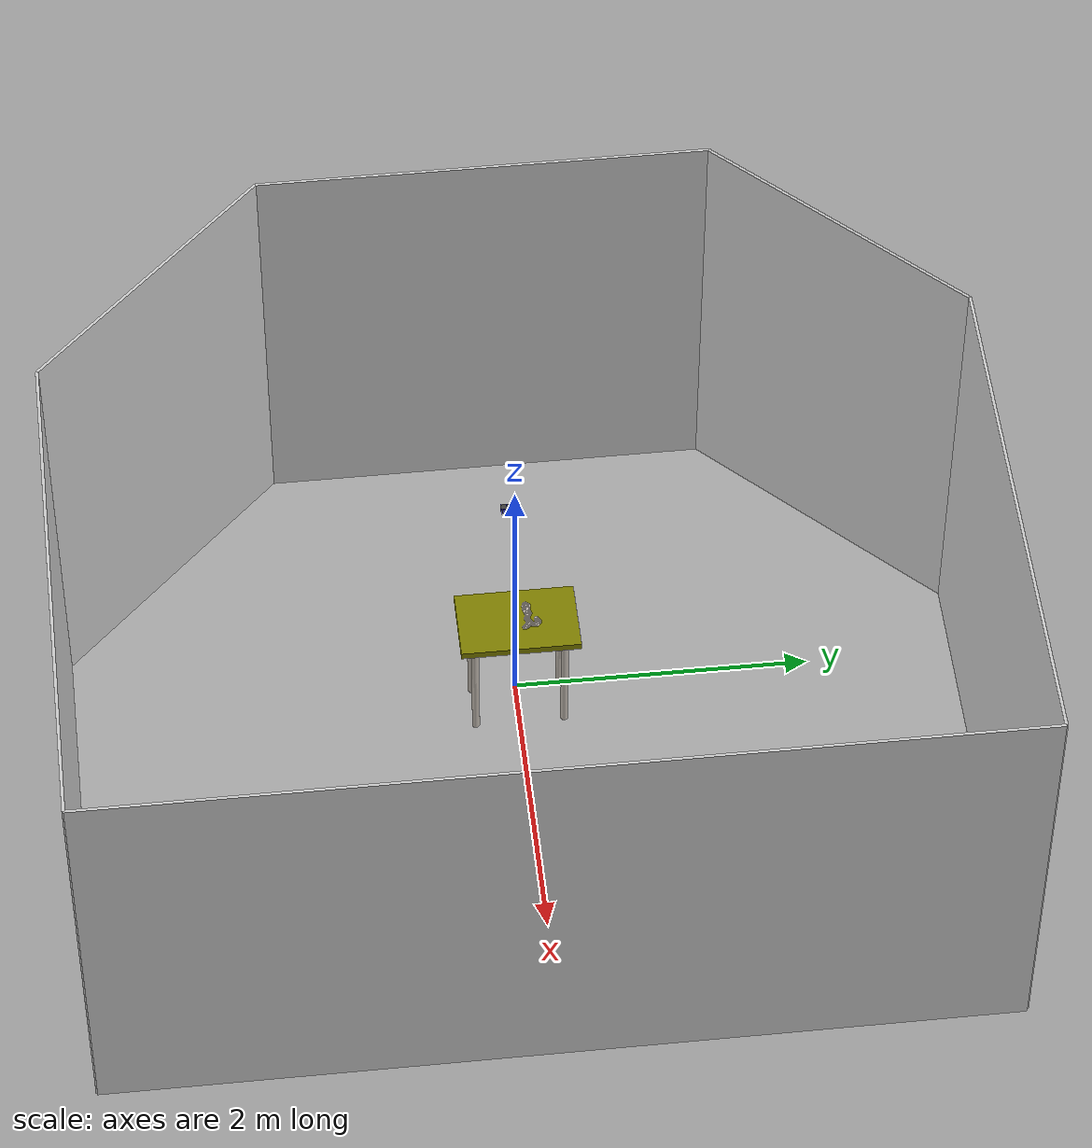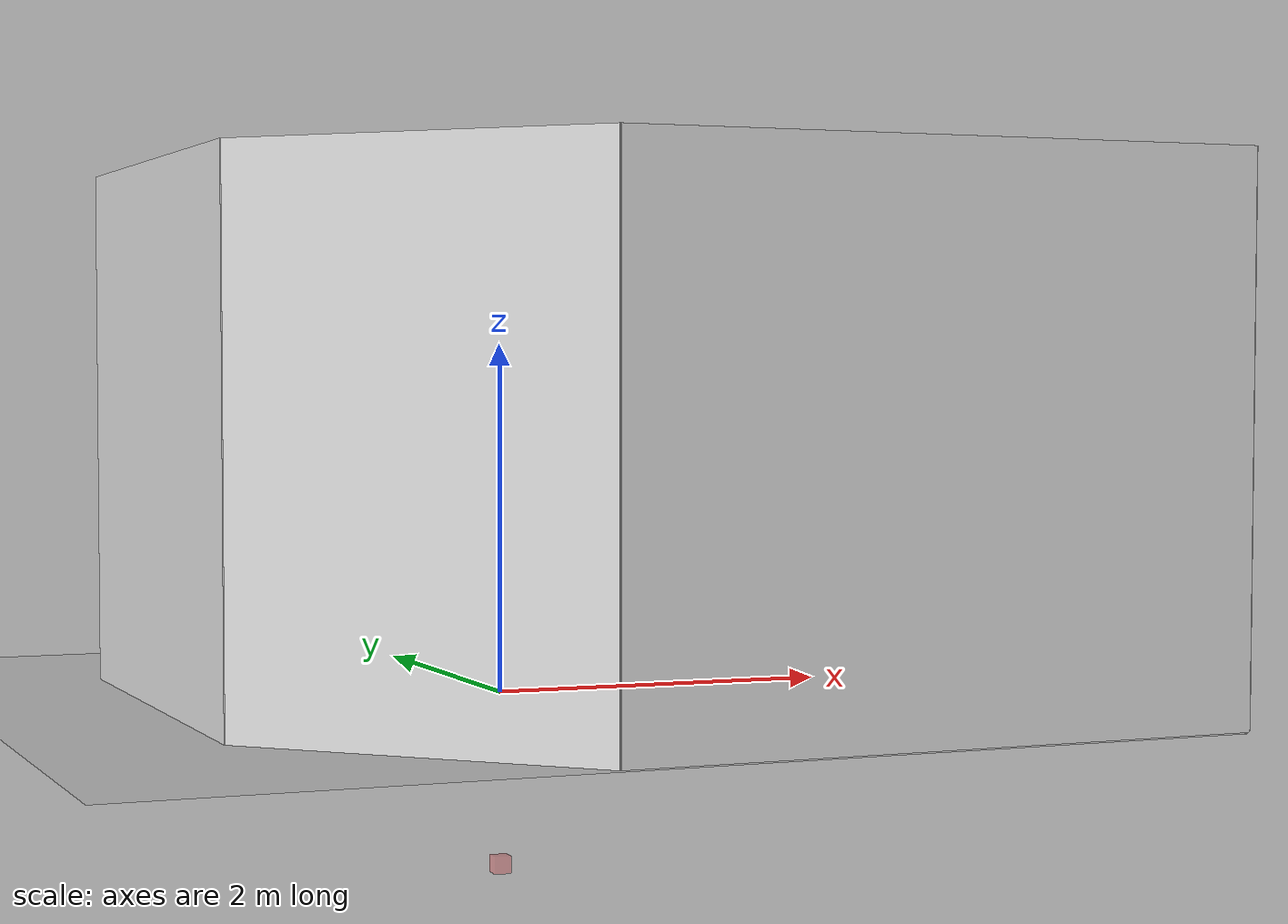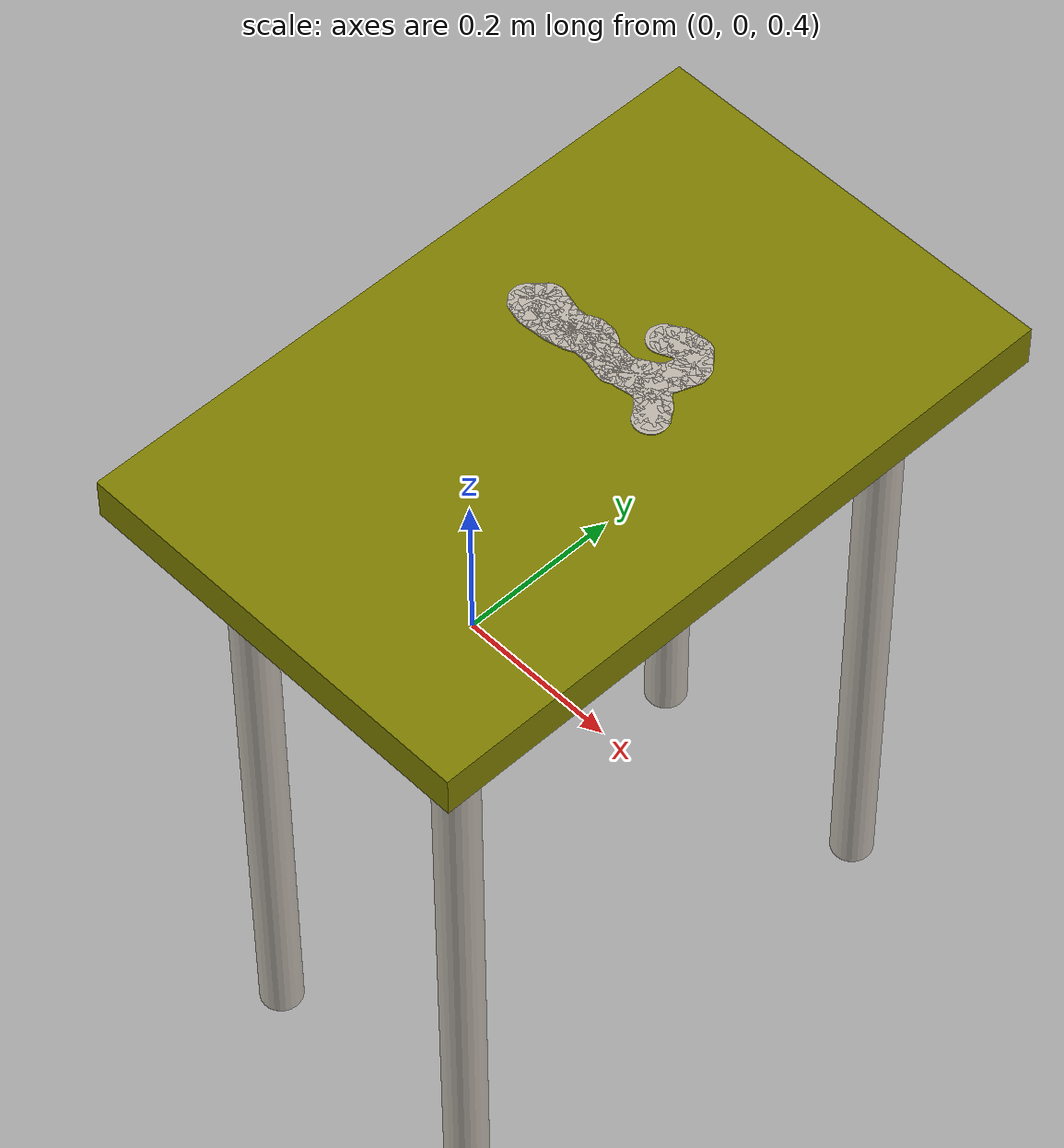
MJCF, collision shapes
<mujoco model="base">
  <compiler angle="radian" meshdir="meshes/"/>

  <option impratio="20" density="1.2" viscosity="2e-05" cone="elliptic"/>

  <size njmax="5000" nconmax="5000"/>

  <visual>
    <map znear="0.001"/>
  </visual>

  <asset>
    <texture type="skybox" colorspace="auto" builtin="gradient" rgb1="0.9 0.9 1" rgb2="0.2 0.3 0.4" width="256" height="1536"/>
    <texture type="2d" colorspace="sRGB" name="texplane" file="/home/cobot/Desktop/Raja/Projects/robosuite/robosuite/models/assets/textures/light-gray-floor-tile.png"/>
    <texture type="cube" colorspace="linear" name="tex-ceramic" file="/home/cobot/Desktop/Raja/Projects/robosuite/robosuite/models/assets/textures/ceramic.png"/>
    <texture type="cube" colorspace="linear" name="tex-steel-brushed" file="/home/cobot/Desktop/Raja/Projects/robosuite/robosuite/models/assets/textures/steel-brushed.png"/>
    <texture type="2d" colorspace="linear" name="tex-light-gray-plaster" file="/home/cobot/Desktop/Raja/Projects/robosuite/robosuite/models/assets/textures/light-gray-plaster.png"/>
    <texture type="cube" colorspace="auto" name="textable" builtin="flat" rgb1="0.5 0.5 0.5" width="512" height="3072"/>
    <texture type="cube" colorspace="linear" name="dirt" file="/home/cobot/Desktop/Raja/Projects/robosuite/robosuite/models/assets/textures/dirt.png"/>
    <material name="floorplane" texture="texplane" texuniform="true" texrepeat="2 2" specular="0" shininess="0" reflectance="0.01"/>
    <material name="table_ceramic" texture="tex-ceramic" specular="0.2" shininess="0"/>
    <material name="table_legs_metal" texture="tex-steel-brushed" shininess="0.8" reflectance="0.8"/>
    <material name="walls_mat" texture="tex-light-gray-plaster" texuniform="true" texrepeat="3 3" specular="0.1" shininess="0.1"/>
    <material name="table_mat" texture="textable"/>
    <material name="dirt_mat" texture="dirt" specular="0" shininess="0"/>
    <material name="robot0_robot_grey" rgba="0.6 0.6 0.6 1"/>
    <material name="robot0_white"/>
    <material name="robot0_black" rgba="0.25 0.25 0.25 1"/>
    <material name="robot0_off_white" rgba="0.9 0.92 0.93 1"/>
    <mesh name="robot0_base_link" file="/home/cobot/Desktop/Raja/Projects/robosuite/robosuite/models/assets/robots/nero/meshes/base_link.stl"/>
    <mesh name="robot0_link1" file="/home/cobot/Desktop/Raja/Projects/robosuite/robosuite/models/assets/robots/nero/meshes/link1.stl"/>
    <mesh name="robot0_link2" file="/home/cobot/Desktop/Raja/Projects/robosuite/robosuite/models/assets/robots/nero/meshes/link2.stl"/>
    <mesh name="robot0_link3" file="/home/cobot/Desktop/Raja/Projects/robosuite/robosuite/models/assets/robots/nero/meshes/link3.stl"/>
    <mesh name="robot0_link4" file="/home/cobot/Desktop/Raja/Projects/robosuite/robosuite/models/assets/robots/nero/meshes/link4.stl"/>
    <mesh name="robot0_link5" file="/home/cobot/Desktop/Raja/Projects/robosuite/robosuite/models/assets/robots/nero/meshes/link5.stl"/>
    <mesh name="robot0_link6" file="/home/cobot/Desktop/Raja/Projects/robosuite/robosuite/models/assets/robots/nero/meshes/link6.stl"/>
    <mesh name="robot0_link7" file="/home/cobot/Desktop/Raja/Projects/robosuite/robosuite/models/assets/robots/nero/meshes/link7.stl"/>
  </asset>

  <worldbody>
    <geom name="floor" size="3 3 0.125" type="plane" group="1" material="floorplane"/>
    <geom name="wall_leftcorner_visual" size="1.06 1.5 0.01" pos="-1.25 2.25 1.5" quat="0.653281 0.653281 0.270598 0.270598" type="box" contype="0" conaffinity="0" group="1" material="walls_mat"/>
    <geom name="wall_rightcorner_visual" size="1.06 1.5 0.01" pos="-1.25 -2.25 1.5" quat="0.653281 0.653281 -0.270598 -0.270598" type="box" contype="0" conaffinity="0" group="1" material="walls_mat"/>
    <geom name="wall_left_visual" size="1.75 1.5 0.01" pos="1.25 3 1.5" quat="0.707107 0.707107 0 0" type="box" contype="0" conaffinity="0" group="1" material="walls_mat"/>
    <geom name="wall_right_visual" size="1.75 1.5 0.01" pos="1.25 -3 1.5" quat="0.707107 -0.707107 0 0" type="box" contype="0" conaffinity="0" group="1" material="walls_mat"/>
    <geom name="wall_rear_visual" size="1.5 1.5 0.01" pos="-2 0 1.5" quat="0.5 0.5 0.5 0.5" type="box" contype="0" conaffinity="0" group="1" material="walls_mat"/>
    <geom name="wall_front_visual" size="3 1.5 0.01" pos="3 0 1.5" quat="0.5 0.5 -0.5 -0.5" type="box" contype="0" conaffinity="0" group="1" material="walls_mat"/>
    <camera name="frontview" pos="1.6 0 1.45" quat="0.560842 0.430646 0.430646 0.560842"/>
    <camera name="topview" pos="-0.03 0 2" quat="-0.707107 0 0 0.707107"/>
    <camera name="agentview" pos="0.5 0 1.35" quat="0.653098 0.271041 0.271041 0.653098"/>
    <camera name="sideview" pos="-0.0565177 1.27612 1.48796" quat="0.00990507 0.00687796 0.591223 0.806418"/>
    <camera name="teleopview" pos="-0.3 0.1 1.2" quat="0.583833 0.399104 -0.399421 -0.583368"/>
    <light pos="1 1 1.5" dir="-0.19245 -0.19245 -0.96225" type="directional" castshadow="false"/>
    <body name="table" pos="0.15 0 0.875">
      <geom name="table_collision" size="0.25 0.4 0.025" type="box" friction="0.03" rgba="0.5 0.5 0 1"/>
      <geom name="table_visual" size="0.25 0.4 0.025" type="box" contype="0" conaffinity="0" group="1" material="table_ceramic"/>
      <geom name="table_leg1_visual" size="0.025 0.4375" pos="0.15 0.3 -0.4375" type="cylinder" contype="0" conaffinity="0" group="1" material="table_legs_metal"/>
      <geom name="table_leg2_visual" size="0.025 0.4375" pos="-0.15 0.3 -0.4375" type="cylinder" contype="0" conaffinity="0" group="1" material="table_legs_metal"/>
      <geom name="table_leg3_visual" size="0.025 0.4375" pos="-0.15 -0.3 -0.4375" type="cylinder" contype="0" conaffinity="0" group="1" material="table_legs_metal"/>
      <geom name="table_leg4_visual" size="0.025 0.4375" pos="0.15 -0.3 -0.4375" type="cylinder" contype="0" conaffinity="0" group="1" material="table_legs_metal"/>
      <site name="table_top" pos="0 0 0.025" size="0.001" rgba="0 0 0 0"/>
      <body name="contact0_main" pos="0.0688657 0.0447439 0.025">
        <geom name="contact0_g0_vis" size="0.02 0.001" type="cylinder" contype="0" conaffinity="0" group="1" mass="0" material="dirt_mat"/>
        <site name="contact0_default_site" pos="0 0 0" size="0.002" rgba="1 0 0 0"/>
      </body>
      <body name="contact1_main" pos="0.0659896 0.0488339 0.025">
        <geom name="contact1_g0_vis" size="0.02 0.001" type="cylinder" contype="0" conaffinity="0" group="1" mass="0" material="dirt_mat"/>
        <site name="contact1_default_site" pos="0 0 0" size="0.002" rgba="1 0 0 0"/>
      </body>
      <body name="contact2_main" pos="0.0631136 0.052924 0.025">
        <geom name="contact2_g0_vis" size="0.02 0.001" type="cylinder" contype="0" conaffinity="0" group="1" mass="0" material="dirt_mat"/>
        <site name="contact2_default_site" pos="0 0 0" size="0.002" rgba="1 0 0 0"/>
      </body>
      <body name="contact3_main" pos="0.0602376 0.057014 0.025">
        <geom name="contact3_g0_vis" size="0.02 0.001" type="cylinder" contype="0" conaffinity="0" group="1" mass="0" material="dirt_mat"/>
        <site name="contact3_default_site" pos="0 0 0" size="0.002" rgba="1 0 0 0"/>
      </body>
      <body name="contact4_main" pos="0.0564626 0.0602927 0.025">
        <geom name="contact4_g0_vis" size="0.02 0.001" type="cylinder" contype="0" conaffinity="0" group="1" mass="0" material="dirt_mat"/>
        <site name="contact4_default_site" pos="0 0 0" size="0.002" rgba="1 0 0 0"/>
      </body>
      <body name="contact5_main" pos="0.0526876 0.0635713 0.025">
        <geom name="contact5_g0_vis" size="0.02 0.001" type="cylinder" contype="0" conaffinity="0" group="1" mass="0" material="dirt_mat"/>
        <site name="contact5_default_site" pos="0 0 0" size="0.002" rgba="1 0 0 0"/>
      </body>
      <body name="contact6_main" pos="0.0489126 0.0668499 0.025">
        <geom name="contact6_g0_vis" size="0.02 0.001" type="cylinder" contype="0" conaffinity="0" group="1" mass="0" material="dirt_mat"/>
        <site name="contact6_default_site" pos="0 0 0" size="0.002" rgba="1 0 0 0"/>
      </body>
      <body name="contact7_main" pos="0.0451375 0.0701285 0.025">
        <geom name="contact7_g0_vis" size="0.02 0.001" type="cylinder" contype="0" conaffinity="0" group="1" mass="0" material="dirt_mat"/>
        <site name="contact7_default_site" pos="0 0 0" size="0.002" rgba="1 0 0 0"/>
      </body>
      <body name="contact8_main" pos="0.0413625 0.0734071 0.025">
        <geom name="contact8_g0_vis" size="0.02 0.001" type="cylinder" contype="0" conaffinity="0" group="1" mass="0" material="dirt_mat"/>
        <site name="contact8_default_site" pos="0 0 0" size="0.002" rgba="1 0 0 0"/>
      </body>
      <body name="contact9_main" pos="0.0364294 0.0725923 0.025">
        <geom name="contact9_g0_vis" size="0.02 0.001" type="cylinder" contype="0" conaffinity="0" group="1" mass="0" material="dirt_mat"/>
        <site name="contact9_default_site" pos="0 0 0" size="0.002" rgba="1 0 0 0"/>
      </body>
      <body name="contact10_main" pos="0.0314962 0.0717774 0.025">
        <geom name="contact10_g0_vis" size="0.02 0.001" type="cylinder" contype="0" conaffinity="0" group="1" mass="0" material="dirt_mat"/>
        <site name="contact10_default_site" pos="0 0 0" size="0.002" rgba="1 0 0 0"/>
      </body>
      <body name="contact11_main" pos="0.0265631 0.0709626 0.025">
        <geom name="contact11_g0_vis" size="0.02 0.001" type="cylinder" contype="0" conaffinity="0" group="1" mass="0" material="dirt_mat"/>
        <site name="contact11_default_site" pos="0 0 0" size="0.002" rgba="1 0 0 0"/>
      </body>
      <body name="contact12_main" pos="0.0216299 0.0701477 0.025">
        <geom name="contact12_g0_vis" size="0.02 0.001" type="cylinder" contype="0" conaffinity="0" group="1" mass="0" material="dirt_mat"/>
        <site name="contact12_default_site" pos="0 0 0" size="0.002" rgba="1 0 0 0"/>
      </body>
      <body name="contact13_main" pos="0.0166968 0.0693329 0.025">
        <geom name="contact13_g0_vis" size="0.02 0.001" type="cylinder" contype="0" conaffinity="0" group="1" mass="0" material="dirt_mat"/>
        <site name="contact13_default_site" pos="0 0 0" size="0.002" rgba="1 0 0 0"/>
      </body>
      <body name="contact14_main" pos="0.0117636 0.068518 0.025">
        <geom name="contact14_g0_vis" size="0.02 0.001" type="cylinder" contype="0" conaffinity="0" group="1" mass="0" material="dirt_mat"/>
        <site name="contact14_default_site" pos="0 0 0" size="0.002" rgba="1 0 0 0"/>
      </body>
      <body name="contact15_main" pos="0.00676366 0.0684924 0.025">
        <geom name="contact15_g0_vis" size="0.02 0.001" type="cylinder" contype="0" conaffinity="0" group="1" mass="0" material="dirt_mat"/>
        <site name="contact15_default_site" pos="0 0 0" size="0.002" rgba="1 0 0 0"/>
      </body>
      <body name="contact16_main" pos="0.00176373 0.0684668 0.025">
        <geom name="contact16_g0_vis" size="0.02 0.001" type="cylinder" contype="0" conaffinity="0" group="1" mass="0" material="dirt_mat"/>
        <site name="contact16_default_site" pos="0 0 0" size="0.002" rgba="1 0 0 0"/>
      </body>
      <body name="contact17_main" pos="-0.00323621 0.0684412 0.025">
        <geom name="contact17_g0_vis" size="0.02 0.001" type="cylinder" contype="0" conaffinity="0" group="1" mass="0" material="dirt_mat"/>
        <site name="contact17_default_site" pos="0 0 0" size="0.002" rgba="1 0 0 0"/>
      </body>
      <body name="contact18_main" pos="-0.00822791 0.0687291 0.025">
        <geom name="contact18_g0_vis" size="0.02 0.001" type="cylinder" contype="0" conaffinity="0" group="1" mass="0" material="dirt_mat"/>
        <site name="contact18_default_site" pos="0 0 0" size="0.002" rgba="1 0 0 0"/>
      </body>
      <body name="contact19_main" pos="-0.0132196 0.0690169 0.025">
        <geom name="contact19_g0_vis" size="0.02 0.001" type="cylinder" contype="0" conaffinity="0" group="1" mass="0" material="dirt_mat"/>
        <site name="contact19_default_site" pos="0 0 0" size="0.002" rgba="1 0 0 0"/>
      </body>
      <body name="contact20_main" pos="-0.0182113 0.0693047 0.025">
        <geom name="contact20_g0_vis" size="0.02 0.001" type="cylinder" contype="0" conaffinity="0" group="1" mass="0" material="dirt_mat"/>
        <site name="contact20_default_site" pos="0 0 0" size="0.002" rgba="1 0 0 0"/>
      </body>
      <body name="contact21_main" pos="-0.023203 0.0695926 0.025">
        <geom name="contact21_g0_vis" size="0.02 0.001" type="cylinder" contype="0" conaffinity="0" group="1" mass="0" material="dirt_mat"/>
        <site name="contact21_default_site" pos="0 0 0" size="0.002" rgba="1 0 0 0"/>
      </body>
      <body name="contact22_main" pos="-0.0281947 0.0698804 0.025">
        <geom name="contact22_g0_vis" size="0.02 0.001" type="cylinder" contype="0" conaffinity="0" group="1" mass="0" material="dirt_mat"/>
        <site name="contact22_default_site" pos="0 0 0" size="0.002" rgba="1 0 0 0"/>
      </body>
      <body name="contact23_main" pos="-0.0331865 0.0701683 0.025">
        <geom name="contact23_g0_vis" size="0.02 0.001" type="cylinder" contype="0" conaffinity="0" group="1" mass="0" material="dirt_mat"/>
        <site name="contact23_default_site" pos="0 0 0" size="0.002" rgba="1 0 0 0"/>
      </body>
      <body name="contact24_main" pos="-0.0381782 0.0704561 0.025">
        <geom name="contact24_g0_vis" size="0.02 0.001" type="cylinder" contype="0" conaffinity="0" group="1" mass="0" material="dirt_mat"/>
        <site name="contact24_default_site" pos="0 0 0" size="0.002" rgba="1 0 0 0"/>
      </body>
      <body name="contact25_main" pos="-0.0431699 0.070744 0.025">
        <geom name="contact25_g0_vis" size="0.02 0.001" type="cylinder" contype="0" conaffinity="0" group="1" mass="0" material="dirt_mat"/>
        <site name="contact25_default_site" pos="0 0 0" size="0.002" rgba="1 0 0 0"/>
      </body>
      <body name="contact26_main" pos="-0.0481616 0.0710318 0.025">
        <geom name="contact26_g0_vis" size="0.02 0.001" type="cylinder" contype="0" conaffinity="0" group="1" mass="0" material="dirt_mat"/>
        <site name="contact26_default_site" pos="0 0 0" size="0.002" rgba="1 0 0 0"/>
      </body>
      <body name="contact27_main" pos="-0.0526828 0.0688968 0.025">
        <geom name="contact27_g0_vis" size="0.02 0.001" type="cylinder" contype="0" conaffinity="0" group="1" mass="0" material="dirt_mat"/>
        <site name="contact27_default_site" pos="0 0 0" size="0.002" rgba="1 0 0 0"/>
      </body>
      <body name="contact28_main" pos="-0.057204 0.0667617 0.025">
        <geom name="contact28_g0_vis" size="0.02 0.001" type="cylinder" contype="0" conaffinity="0" group="1" mass="0" material="dirt_mat"/>
        <site name="contact28_default_site" pos="0 0 0" size="0.002" rgba="1 0 0 0"/>
      </body>
      <body name="contact29_main" pos="-0.0617253 0.0646267 0.025">
        <geom name="contact29_g0_vis" size="0.02 0.001" type="cylinder" contype="0" conaffinity="0" group="1" mass="0" material="dirt_mat"/>
        <site name="contact29_default_site" pos="0 0 0" size="0.002" rgba="1 0 0 0"/>
      </body>
      <body name="contact30_main" pos="-0.0665889 0.0634668 0.025">
        <geom name="contact30_g0_vis" size="0.02 0.001" type="cylinder" contype="0" conaffinity="0" group="1" mass="0" material="dirt_mat"/>
        <site name="contact30_default_site" pos="0 0 0" size="0.002" rgba="1 0 0 0"/>
      </body>
      <body name="contact31_main" pos="-0.0714525 0.062307 0.025">
        <geom name="contact31_g0_vis" size="0.02 0.001" type="cylinder" contype="0" conaffinity="0" group="1" mass="0" material="dirt_mat"/>
        <site name="contact31_default_site" pos="0 0 0" size="0.002" rgba="1 0 0 0"/>
      </body>
      <body name="contact32_main" pos="-0.0763161 0.0611472 0.025">
        <geom name="contact32_g0_vis" size="0.02 0.001" type="cylinder" contype="0" conaffinity="0" group="1" mass="0" material="dirt_mat"/>
        <site name="contact32_default_site" pos="0 0 0" size="0.002" rgba="1 0 0 0"/>
      </body>
      <body name="contact33_main" pos="-0.0811798 0.0599874 0.025">
        <geom name="contact33_g0_vis" size="0.02 0.001" type="cylinder" contype="0" conaffinity="0" group="1" mass="0" material="dirt_mat"/>
        <site name="contact33_default_site" pos="0 0 0" size="0.002" rgba="1 0 0 0"/>
      </body>
      <body name="contact34_main" pos="-0.0861693 0.0596633 0.025">
        <geom name="contact34_g0_vis" size="0.02 0.001" type="cylinder" contype="0" conaffinity="0" group="1" mass="0" material="dirt_mat"/>
        <site name="contact34_default_site" pos="0 0 0" size="0.002" rgba="1 0 0 0"/>
      </body>
      <body name="contact35_main" pos="-0.0911587 0.0593393 0.025">
        <geom name="contact35_g0_vis" size="0.02 0.001" type="cylinder" contype="0" conaffinity="0" group="1" mass="0" material="dirt_mat"/>
        <site name="contact35_default_site" pos="0 0 0" size="0.002" rgba="1 0 0 0"/>
      </body>
      <body name="contact36_main" pos="-0.0961482 0.0590152 0.025">
        <geom name="contact36_g0_vis" size="0.02 0.001" type="cylinder" contype="0" conaffinity="0" group="1" mass="0" material="dirt_mat"/>
        <site name="contact36_default_site" pos="0 0 0" size="0.002" rgba="1 0 0 0"/>
      </body>
      <body name="contact37_main" pos="-0.101138 0.0586911 0.025">
        <geom name="contact37_g0_vis" size="0.02 0.001" type="cylinder" contype="0" conaffinity="0" group="1" mass="0" material="dirt_mat"/>
        <site name="contact37_default_site" pos="0 0 0" size="0.002" rgba="1 0 0 0"/>
      </body>
      <body name="contact38_main" pos="-0.106127 0.0583671 0.025">
        <geom name="contact38_g0_vis" size="0.02 0.001" type="cylinder" contype="0" conaffinity="0" group="1" mass="0" material="dirt_mat"/>
        <site name="contact38_default_site" pos="0 0 0" size="0.002" rgba="1 0 0 0"/>
      </body>
      <body name="contact39_main" pos="-0.111117 0.058043 0.025">
        <geom name="contact39_g0_vis" size="0.02 0.001" type="cylinder" contype="0" conaffinity="0" group="1" mass="0" material="dirt_mat"/>
        <site name="contact39_default_site" pos="0 0 0" size="0.002" rgba="1 0 0 0"/>
      </body>
      <body name="contact40_main" pos="-0.115968 0.0592526 0.025">
        <geom name="contact40_g0_vis" size="0.02 0.001" type="cylinder" contype="0" conaffinity="0" group="1" mass="0" material="dirt_mat"/>
        <site name="contact40_default_site" pos="0 0 0" size="0.002" rgba="1 0 0 0"/>
      </body>
      <body name="contact41_main" pos="-0.12082 0.0604622 0.025">
        <geom name="contact41_g0_vis" size="0.02 0.001" type="cylinder" contype="0" conaffinity="0" group="1" mass="0" material="dirt_mat"/>
        <site name="contact41_default_site" pos="0 0 0" size="0.002" rgba="1 0 0 0"/>
      </body>
      <body name="contact42_main" pos="-0.125671 0.0616718 0.025">
        <geom name="contact42_g0_vis" size="0.02 0.001" type="cylinder" contype="0" conaffinity="0" group="1" mass="0" material="dirt_mat"/>
        <site name="contact42_default_site" pos="0 0 0" size="0.002" rgba="1 0 0 0"/>
      </body>
      <body name="contact43_main" pos="-0.128701 0.0656492 0.025">
        <geom name="contact43_g0_vis" size="0.02 0.001" type="cylinder" contype="0" conaffinity="0" group="1" mass="0" material="dirt_mat"/>
        <site name="contact43_default_site" pos="0 0 0" size="0.002" rgba="1 0 0 0"/>
      </body>
      <body name="contact44_main" pos="-0.125316 0.0693287 0.025">
        <geom name="contact44_g0_vis" size="0.02 0.001" type="cylinder" contype="0" conaffinity="0" group="1" mass="0" material="dirt_mat"/>
        <site name="contact44_default_site" pos="0 0 0" size="0.002" rgba="1 0 0 0"/>
      </body>
      <body name="contact45_main" pos="-0.122014 0.0730837 0.025">
        <geom name="contact45_g0_vis" size="0.02 0.001" type="cylinder" contype="0" conaffinity="0" group="1" mass="0" material="dirt_mat"/>
        <site name="contact45_default_site" pos="0 0 0" size="0.002" rgba="1 0 0 0"/>
      </body>
      <body name="contact46_main" pos="-0.118713 0.0768386 0.025">
        <geom name="contact46_g0_vis" size="0.02 0.001" type="cylinder" contype="0" conaffinity="0" group="1" mass="0" material="dirt_mat"/>
        <site name="contact46_default_site" pos="0 0 0" size="0.002" rgba="1 0 0 0"/>
      </body>
      <body name="contact47_main" pos="-0.115411 0.0805936 0.025">
        <geom name="contact47_g0_vis" size="0.02 0.001" type="cylinder" contype="0" conaffinity="0" group="1" mass="0" material="dirt_mat"/>
        <site name="contact47_default_site" pos="0 0 0" size="0.002" rgba="1 0 0 0"/>
      </body>
      <body name="contact48_main" pos="-0.110563 0.0793711 0.025">
        <geom name="contact48_g0_vis" size="0.02 0.001" type="cylinder" contype="0" conaffinity="0" group="1" mass="0" material="dirt_mat"/>
        <site name="contact48_default_site" pos="0 0 0" size="0.002" rgba="1 0 0 0"/>
      </body>
      <body name="contact49_main" pos="-0.105715 0.0781485 0.025">
        <geom name="contact49_g0_vis" size="0.02 0.001" type="cylinder" contype="0" conaffinity="0" group="1" mass="0" material="dirt_mat"/>
        <site name="contact49_default_site" pos="0 0 0" size="0.002" rgba="1 0 0 0"/>
      </body>
      <body name="contact50_main" pos="-0.100866 0.076926 0.025">
        <geom name="contact50_g0_vis" size="0.02 0.001" type="cylinder" contype="0" conaffinity="0" group="1" mass="0" material="dirt_mat"/>
        <site name="contact50_default_site" pos="0 0 0" size="0.002" rgba="1 0 0 0"/>
      </body>
      <body name="contact51_main" pos="-0.0960181 0.0757034 0.025">
        <geom name="contact51_g0_vis" size="0.02 0.001" type="cylinder" contype="0" conaffinity="0" group="1" mass="0" material="dirt_mat"/>
        <site name="contact51_default_site" pos="0 0 0" size="0.002" rgba="1 0 0 0"/>
      </body>
      <body name="contact52_main" pos="-0.0911699 0.0744809 0.025">
        <geom name="contact52_g0_vis" size="0.02 0.001" type="cylinder" contype="0" conaffinity="0" group="1" mass="0" material="dirt_mat"/>
        <site name="contact52_default_site" pos="0 0 0" size="0.002" rgba="1 0 0 0"/>
      </body>
      <body name="contact53_main" pos="-0.0863217 0.0732584 0.025">
        <geom name="contact53_g0_vis" size="0.02 0.001" type="cylinder" contype="0" conaffinity="0" group="1" mass="0" material="dirt_mat"/>
        <site name="contact53_default_site" pos="0 0 0" size="0.002" rgba="1 0 0 0"/>
      </body>
      <body name="contact54_main" pos="-0.0814734 0.0720358 0.025">
        <geom name="contact54_g0_vis" size="0.02 0.001" type="cylinder" contype="0" conaffinity="0" group="1" mass="0" material="dirt_mat"/>
        <site name="contact54_default_site" pos="0 0 0" size="0.002" rgba="1 0 0 0"/>
      </body>
      <body name="contact55_main" pos="-0.0766416 0.0733216 0.025">
        <geom name="contact55_g0_vis" size="0.02 0.001" type="cylinder" contype="0" conaffinity="0" group="1" mass="0" material="dirt_mat"/>
        <site name="contact55_default_site" pos="0 0 0" size="0.002" rgba="1 0 0 0"/>
      </body>
      <body name="contact56_main" pos="-0.0716416 0.0733452 0.025">
        <geom name="contact56_g0_vis" size="0.02 0.001" type="cylinder" contype="0" conaffinity="0" group="1" mass="0" material="dirt_mat"/>
        <site name="contact56_default_site" pos="0 0 0" size="0.002" rgba="1 0 0 0"/>
      </body>
      <body name="contact57_main" pos="-0.0666417 0.0733688 0.025">
        <geom name="contact57_g0_vis" size="0.02 0.001" type="cylinder" contype="0" conaffinity="0" group="1" mass="0" material="dirt_mat"/>
        <site name="contact57_default_site" pos="0 0 0" size="0.002" rgba="1 0 0 0"/>
      </body>
      <body name="contact58_main" pos="-0.0622569 0.0757716 0.025">
        <geom name="contact58_g0_vis" size="0.02 0.001" type="cylinder" contype="0" conaffinity="0" group="1" mass="0" material="dirt_mat"/>
        <site name="contact58_default_site" pos="0 0 0" size="0.002" rgba="1 0 0 0"/>
      </body>
      <body name="contact59_main" pos="-0.0578721 0.0781744 0.025">
        <geom name="contact59_g0_vis" size="0.02 0.001" type="cylinder" contype="0" conaffinity="0" group="1" mass="0" material="dirt_mat"/>
        <site name="contact59_default_site" pos="0 0 0" size="0.002" rgba="1 0 0 0"/>
      </body>
      <body name="contact60_main" pos="-0.0534873 0.0805772 0.025">
        <geom name="contact60_g0_vis" size="0.02 0.001" type="cylinder" contype="0" conaffinity="0" group="1" mass="0" material="dirt_mat"/>
        <site name="contact60_default_site" pos="0 0 0" size="0.002" rgba="1 0 0 0"/>
      </body>
      <body name="contact61_main" pos="-0.0484888 0.0804521 0.025">
        <geom name="contact61_g0_vis" size="0.02 0.001" type="cylinder" contype="0" conaffinity="0" group="1" mass="0" material="dirt_mat"/>
        <site name="contact61_default_site" pos="0 0 0" size="0.002" rgba="1 0 0 0"/>
      </body>
      <body name="contact62_main" pos="-0.0434904 0.0803269 0.025">
        <geom name="contact62_g0_vis" size="0.02 0.001" type="cylinder" contype="0" conaffinity="0" group="1" mass="0" material="dirt_mat"/>
        <site name="contact62_default_site" pos="0 0 0" size="0.002" rgba="1 0 0 0"/>
      </body>
      <body name="contact63_main" pos="-0.0388127 0.0785609 0.025">
        <geom name="contact63_g0_vis" size="0.02 0.001" type="cylinder" contype="0" conaffinity="0" group="1" mass="0" material="dirt_mat"/>
        <site name="contact63_default_site" pos="0 0 0" size="0.002" rgba="1 0 0 0"/>
      </body>
      <body name="contact64_main" pos="-0.0354366 0.0748728 0.025">
        <geom name="contact64_g0_vis" size="0.02 0.001" type="cylinder" contype="0" conaffinity="0" group="1" mass="0" material="dirt_mat"/>
        <site name="contact64_default_site" pos="0 0 0" size="0.002" rgba="1 0 0 0"/>
      </body>
      <body name="contact65_main" pos="-0.0320604 0.0711848 0.025">
        <geom name="contact65_g0_vis" size="0.02 0.001" type="cylinder" contype="0" conaffinity="0" group="1" mass="0" material="dirt_mat"/>
        <site name="contact65_default_site" pos="0 0 0" size="0.002" rgba="1 0 0 0"/>
      </body>
      <body name="contact66_main" pos="-0.0271955 0.0700305 0.025">
        <geom name="contact66_g0_vis" size="0.02 0.001" type="cylinder" contype="0" conaffinity="0" group="1" mass="0" material="dirt_mat"/>
        <site name="contact66_default_site" pos="0 0 0" size="0.002" rgba="1 0 0 0"/>
      </body>
      <body name="contact67_main" pos="-0.0223306 0.0688762 0.025">
        <geom name="contact67_g0_vis" size="0.02 0.001" type="cylinder" contype="0" conaffinity="0" group="1" mass="0" material="dirt_mat"/>
        <site name="contact67_default_site" pos="0 0 0" size="0.002" rgba="1 0 0 0"/>
      </body>
      <body name="contact68_main" pos="-0.0174656 0.0677219 0.025">
        <geom name="contact68_g0_vis" size="0.02 0.001" type="cylinder" contype="0" conaffinity="0" group="1" mass="0" material="dirt_mat"/>
        <site name="contact68_default_site" pos="0 0 0" size="0.002" rgba="1 0 0 0"/>
      </body>
      <body name="contact69_main" pos="-0.0126007 0.0665676 0.025">
        <geom name="contact69_g0_vis" size="0.02 0.001" type="cylinder" contype="0" conaffinity="0" group="1" mass="0" material="dirt_mat"/>
        <site name="contact69_default_site" pos="0 0 0" size="0.002" rgba="1 0 0 0"/>
      </body>
      <body name="contact70_main" pos="-0.00773576 0.0654133 0.025">
        <geom name="contact70_g0_vis" size="0.02 0.001" type="cylinder" contype="0" conaffinity="0" group="1" mass="0" material="dirt_mat"/>
        <site name="contact70_default_site" pos="0 0 0" size="0.002" rgba="1 0 0 0"/>
      </body>
      <body name="contact71_main" pos="-0.00287082 0.064259 0.025">
        <geom name="contact71_g0_vis" size="0.02 0.001" type="cylinder" contype="0" conaffinity="0" group="1" mass="0" material="dirt_mat"/>
        <site name="contact71_default_site" pos="0 0 0" size="0.002" rgba="1 0 0 0"/>
      </body>
      <body name="contact72_main" pos="0.00158571 0.0665261 0.025">
        <geom name="contact72_g0_vis" size="0.02 0.001" type="cylinder" contype="0" conaffinity="0" group="1" mass="0" material="dirt_mat"/>
        <site name="contact72_default_site" pos="0 0 0" size="0.002" rgba="1 0 0 0"/>
      </body>
      <body name="contact73_main" pos="0.00604223 0.0687931 0.025">
        <geom name="contact73_g0_vis" size="0.02 0.001" type="cylinder" contype="0" conaffinity="0" group="1" mass="0" material="dirt_mat"/>
        <site name="contact73_default_site" pos="0 0 0" size="0.002" rgba="1 0 0 0"/>
      </body>
      <body name="contact74_main" pos="0.0104988 0.0710601 0.025">
        <geom name="contact74_g0_vis" size="0.02 0.001" type="cylinder" contype="0" conaffinity="0" group="1" mass="0" material="dirt_mat"/>
        <site name="contact74_default_site" pos="0 0 0" size="0.002" rgba="1 0 0 0"/>
      </body>
      <body name="contact75_main" pos="0.0149553 0.0733271 0.025">
        <geom name="contact75_g0_vis" size="0.02 0.001" type="cylinder" contype="0" conaffinity="0" group="1" mass="0" material="dirt_mat"/>
        <site name="contact75_default_site" pos="0 0 0" size="0.002" rgba="1 0 0 0"/>
      </body>
      <body name="contact76_main" pos="0.0193096 0.0757848 0.025">
        <geom name="contact76_g0_vis" size="0.02 0.001" type="cylinder" contype="0" conaffinity="0" group="1" mass="0" material="dirt_mat"/>
        <site name="contact76_default_site" pos="0 0 0" size="0.002" rgba="1 0 0 0"/>
      </body>
      <body name="contact77_main" pos="0.0236639 0.0782424 0.025">
        <geom name="contact77_g0_vis" size="0.02 0.001" type="cylinder" contype="0" conaffinity="0" group="1" mass="0" material="dirt_mat"/>
        <site name="contact77_default_site" pos="0 0 0" size="0.002" rgba="1 0 0 0"/>
      </body>
      <body name="contact78_main" pos="0.0280182 0.0807 0.025">
        <geom name="contact78_g0_vis" size="0.02 0.001" type="cylinder" contype="0" conaffinity="0" group="1" mass="0" material="dirt_mat"/>
        <site name="contact78_default_site" pos="0 0 0" size="0.002" rgba="1 0 0 0"/>
      </body>
      <body name="contact79_main" pos="0.0323726 0.0831576 0.025">
        <geom name="contact79_g0_vis" size="0.02 0.001" type="cylinder" contype="0" conaffinity="0" group="1" mass="0" material="dirt_mat"/>
        <site name="contact79_default_site" pos="0 0 0" size="0.002" rgba="1 0 0 0"/>
      </body>
      <body name="contact80_main" pos="0.0360205 0.086577 0.025">
        <geom name="contact80_g0_vis" size="0.02 0.001" type="cylinder" contype="0" conaffinity="0" group="1" mass="0" material="dirt_mat"/>
        <site name="contact80_default_site" pos="0 0 0" size="0.002" rgba="1 0 0 0"/>
      </body>
      <body name="contact81_main" pos="0.0396685 0.0899964 0.025">
        <geom name="contact81_g0_vis" size="0.02 0.001" type="cylinder" contype="0" conaffinity="0" group="1" mass="0" material="dirt_mat"/>
        <site name="contact81_default_site" pos="0 0 0" size="0.002" rgba="1 0 0 0"/>
      </body>
      <body name="contact82_main" pos="0.0433165 0.0934158 0.025">
        <geom name="contact82_g0_vis" size="0.02 0.001" type="cylinder" contype="0" conaffinity="0" group="1" mass="0" material="dirt_mat"/>
        <site name="contact82_default_site" pos="0 0 0" size="0.002" rgba="1 0 0 0"/>
      </body>
      <body name="contact83_main" pos="0.0450628 0.098101 0.025">
        <geom name="contact83_g0_vis" size="0.02 0.001" type="cylinder" contype="0" conaffinity="0" group="1" mass="0" material="dirt_mat"/>
        <site name="contact83_default_site" pos="0 0 0" size="0.002" rgba="1 0 0 0"/>
      </body>
      <body name="contact84_main" pos="0.0468091 0.102786 0.025">
        <geom name="contact84_g0_vis" size="0.02 0.001" type="cylinder" contype="0" conaffinity="0" group="1" mass="0" material="dirt_mat"/>
        <site name="contact84_default_site" pos="0 0 0" size="0.002" rgba="1 0 0 0"/>
      </body>
      <body name="contact85_main" pos="0.0485554 0.107471 0.025">
        <geom name="contact85_g0_vis" size="0.02 0.001" type="cylinder" contype="0" conaffinity="0" group="1" mass="0" material="dirt_mat"/>
        <site name="contact85_default_site" pos="0 0 0" size="0.002" rgba="1 0 0 0"/>
      </body>
      <body name="contact86_main" pos="0.0503017 0.112156 0.025">
        <geom name="contact86_g0_vis" size="0.02 0.001" type="cylinder" contype="0" conaffinity="0" group="1" mass="0" material="dirt_mat"/>
        <site name="contact86_default_site" pos="0 0 0" size="0.002" rgba="1 0 0 0"/>
      </body>
      <body name="contact87_main" pos="0.052048 0.116841 0.025">
        <geom name="contact87_g0_vis" size="0.02 0.001" type="cylinder" contype="0" conaffinity="0" group="1" mass="0" material="dirt_mat"/>
        <site name="contact87_default_site" pos="0 0 0" size="0.002" rgba="1 0 0 0"/>
      </body>
      <body name="contact88_main" pos="0.05083 0.121691 0.025">
        <geom name="contact88_g0_vis" size="0.02 0.001" type="cylinder" contype="0" conaffinity="0" group="1" mass="0" material="dirt_mat"/>
        <site name="contact88_default_site" pos="0 0 0" size="0.002" rgba="1 0 0 0"/>
      </body>
      <body name="contact89_main" pos="0.0474812 0.125404 0.025">
        <geom name="contact89_g0_vis" size="0.02 0.001" type="cylinder" contype="0" conaffinity="0" group="1" mass="0" material="dirt_mat"/>
        <site name="contact89_default_site" pos="0 0 0" size="0.002" rgba="1 0 0 0"/>
      </body>
      <body name="contact90_main" pos="0.0441325 0.129117 0.025">
        <geom name="contact90_g0_vis" size="0.02 0.001" type="cylinder" contype="0" conaffinity="0" group="1" mass="0" material="dirt_mat"/>
        <site name="contact90_default_site" pos="0 0 0" size="0.002" rgba="1 0 0 0"/>
      </body>
      <body name="contact91_main" pos="0.0407837 0.13283 0.025">
        <geom name="contact91_g0_vis" size="0.02 0.001" type="cylinder" contype="0" conaffinity="0" group="1" mass="0" material="dirt_mat"/>
        <site name="contact91_default_site" pos="0 0 0" size="0.002" rgba="1 0 0 0"/>
      </body>
      <body name="contact92_main" pos="0.037435 0.136543 0.025">
        <geom name="contact92_g0_vis" size="0.02 0.001" type="cylinder" contype="0" conaffinity="0" group="1" mass="0" material="dirt_mat"/>
        <site name="contact92_default_site" pos="0 0 0" size="0.002" rgba="1 0 0 0"/>
      </body>
      <body name="contact93_main" pos="0.0324482 0.136179 0.025">
        <geom name="contact93_g0_vis" size="0.02 0.001" type="cylinder" contype="0" conaffinity="0" group="1" mass="0" material="dirt_mat"/>
        <site name="contact93_default_site" pos="0 0 0" size="0.002" rgba="1 0 0 0"/>
      </body>
      <body name="contact94_main" pos="0.0274614 0.135816 0.025">
        <geom name="contact94_g0_vis" size="0.02 0.001" type="cylinder" contype="0" conaffinity="0" group="1" mass="0" material="dirt_mat"/>
        <site name="contact94_default_site" pos="0 0 0" size="0.002" rgba="1 0 0 0"/>
      </body>
      <body name="contact95_main" pos="0.0224747 0.135452 0.025">
        <geom name="contact95_g0_vis" size="0.02 0.001" type="cylinder" contype="0" conaffinity="0" group="1" mass="0" material="dirt_mat"/>
        <site name="contact95_default_site" pos="0 0 0" size="0.002" rgba="1 0 0 0"/>
      </body>
      <body name="contact96_main" pos="0.0175287 0.13472 0.025">
        <geom name="contact96_g0_vis" size="0.02 0.001" type="cylinder" contype="0" conaffinity="0" group="1" mass="0" material="dirt_mat"/>
        <site name="contact96_default_site" pos="0 0 0" size="0.002" rgba="1 0 0 0"/>
      </body>
      <body name="contact97_main" pos="0.0140354 0.131142 0.025">
        <geom name="contact97_g0_vis" size="0.02 0.001" type="cylinder" contype="0" conaffinity="0" group="1" mass="0" material="dirt_mat"/>
        <site name="contact97_default_site" pos="0 0 0" size="0.002" rgba="1 0 0 0"/>
      </body>
      <body name="contact98_main" pos="0.00948938 0.129061 0.025">
        <geom name="contact98_g0_vis" size="0.02 0.001" type="cylinder" contype="0" conaffinity="0" group="1" mass="0" material="dirt_mat"/>
        <site name="contact98_default_site" pos="0 0 0" size="0.002" rgba="1 0 0 0"/>
      </body>
      <body name="contact99_main" pos="0.00494334 0.126979 0.025">
        <geom name="contact99_g0_vis" size="0.02 0.001" type="cylinder" contype="0" conaffinity="0" group="1" mass="0" material="dirt_mat"/>
        <site name="contact99_default_site" pos="0 0 0" size="0.002" rgba="1 0 0 0"/>
      </body>
    </body>
    <body name="left_eef_target" pos="0 0 -1" mocap="true">
      <geom name="left_eef_target_box" size="0.05 0.05 0.05" type="box" contype="0" conaffinity="0" group="2" rgba="0.898 0.42 0.435 0.5"/>
      <geom name="left_eef_target_sphere" size="0.01" contype="0" conaffinity="0" group="2" rgba="0.898 0.42 0.435 0.8"/>
    </body>
    <body name="right_eef_target" pos="0 0 -1" mocap="true">
      <geom name="right_eef_target_box" size="0.05 0.05 0.05" type="box" contype="0" conaffinity="0" group="2" rgba="0.208 0.314 0.439 0.5"/>
      <geom name="right_eef_target_sphere" size="0.01" contype="0" conaffinity="0" group="2" rgba="0.208 0.314 0.439 0.8"/>
    </body>
    <body name="robot0_base_link" pos="-0.21 0 0.85" quat="0.000796327 0 0 -1">
      <inertial pos="-0.00319466 -5.46761e-05 0.0432176" quat="0.712681 0.00763931 0.0100067 0.701375" mass="1.06458" diaginertia="0.00114403 0.00102664 0.000908653"/>
      <geom name="robot0_g0_vis" type="mesh" contype="0" conaffinity="0" group="1" material="robot0_robot_grey" mesh="robot0_base_link"/>
      <site name="robot0_right_center" pos="0 0 0" size="0.01" group="2" rgba="1 0.3 0.3 -1"/>
      <body name="robot0_link1" pos="0 0 0.138">
        <inertial pos="-0.000768106 -5.71803e-05 -0.00686373" quat="0.998496 0.0243284 -0.0474034 0.0129308" mass="0.767105" diaginertia="0.000668361 0.000545022 0.000513619"/>
        <joint name="robot0_joint1" pos="0 0 0" axis="0 0 1" range="-2.70526 2.70526" actuatorfrcrange="-24 24" armature="5" damping="0.04" frictionloss="0.1"/>
        <geom name="robot0_g1_vis" type="mesh" contype="0" conaffinity="0" group="1" material="robot0_robot_grey" mesh="robot0_link1"/>
        <body name="robot0_link2" quat="1.89469e-08 -1.89469e-08 0.707107 -0.707107">
          <inertial pos="0.000796867 -0.0789033 0.00111849" quat="0.724173 0.689546 -0.00281155 -0.00963045" mass="0.693819" diaginertia="0.00201137 0.00182229 0.000632162"/>
          <joint name="robot0_joint2" pos="0 0 0" axis="0 0 1" range="-1.78 1.78" actuatorfrcrange="-24 24" armature="2.5" damping="0.04" frictionloss="0.1"/>
          <geom name="robot0_g2_vis" type="mesh" contype="0" conaffinity="0" group="1" material="robot0_robot_grey" mesh="robot0_link2"/>
          <body name="robot0_link3" pos="0 -0.31 0" quat="-1.37922e-08 -1.37922e-08 -0.707107 0.707107">
            <inertial pos="0.000145134 -0.00121379 -0.0486114" quat="0.999978 -0.00572699 -0.000503892 -0.00336231" mass="0.672465" diaginertia="0.0034323 0.00338703 0.000288126"/>
            <joint name="robot0_joint3" pos="0 0 0" axis="0 0 1" range="-2.75 2.75" actuatorfrcrange="-18 18" armature="1.66667" damping="0.02" frictionloss="0.1"/>
            <geom name="robot0_g3_vis" type="mesh" contype="0" conaffinity="0" group="1" material="robot0_robot_grey" mesh="robot0_link3"/>
            <body name="robot0_link4" quat="-1.37922e-08 -1.37922e-08 -0.707107 0.707107">
              <inertial pos="-0.000313346 -0.0567519 0.000760561" quat="0.743967 0.668141 -0.00555621 -0.00837616" mass="0.484514" diaginertia="0.000503972 0.000403451 0.00023296"/>
              <joint name="robot0_joint4" pos="0 0 0" axis="0 0 1" range="-1.05 2.22" actuatorfrcrange="-18 18" armature="1.25" damping="0.02" frictionloss="0.1"/>
              <geom name="robot0_g4_vis" type="mesh" contype="0" conaffinity="0" group="1" material="robot0_robot_grey" mesh="robot0_link4"/>
              <body name="robot0_link5" pos="0 -0.27001 0" quat="0.5 0.5 -0.5 0.5">
                <inertial pos="0.00265591 0.00201196 -0.116209" quat="0.994383 -0.0299767 0.0135244 0.100607" mass="0.583684" diaginertia="0.000897188 0.000859677 0.000214923"/>
                <joint name="robot0_joint5" pos="0 0 0" axis="0 0 1" range="-2.75 2.75" actuatorfrcrange="-8 8" armature="1" damping="0.01" frictionloss="0.1"/>
                <geom name="robot0_g5_vis" type="mesh" contype="0" conaffinity="0" group="1" material="robot0_robot_grey" mesh="robot0_link5"/>
                <body name="robot0_link6" quat="0.5 0.5 -0.5 0.5">
                  <inertial pos="9.50151e-05 0.00107831 -0.00019111" quat="0.708463 0.705104 -0.0268147 0.0137484" mass="0.314041" diaginertia="6.02857e-05 5.75589e-05 4.69904e-05"/>
                  <joint name="robot0_joint6" pos="0 0 0" axis="0 0 1" range="-0.77 0.95" actuatorfrcrange="-8 8" armature="0.833333" damping="0.01" frictionloss="0.1"/>
                  <geom name="robot0_g6_vis" type="mesh" contype="0" conaffinity="0" group="1" material="robot0_robot_grey" mesh="robot0_link6"/>
                  <body name="robot0_link7" pos="0 -0.0235 0" quat="0.707107 0.707107 0 0">
                    <inertial pos="-0.00014 -0.0001 -0.00275" quat="0.5 0.5 -0.5 0.5" mass="1e-06" diaginertia="2e-07 1.1e-07 1.1e-07"/>
                    <joint name="robot0_joint7" pos="0 0 0" axis="0 0 1" range="-1.5708 1.5708" actuatorfrcrange="-8 8" armature="0.714286" damping="0.01" frictionloss="0.1"/>
                    <geom name="robot0_g7_vis" type="mesh" contype="0" conaffinity="0" group="1" material="robot0_robot_grey" mesh="robot0_link7"/>
                    <body name="robot0_right_hand">
                      <inertial pos="0 0 0" mass="0.5" diaginertia="0.05 0.05 0.05"/>
                      <camera name="robot0_eye_in_hand" pos="0 0.1 0" quat="0 -0.707107 0 0.707107" fovy="75"/>
                      <body name="gripper0_right_wiping_gripper" pos="0.055 0 -0.035" quat="0.707107 0 0.707107 0">
                        <inertial pos="0 0 0" mass="0.03" diaginertia="0.01 0.01 0.01"/>
                        <geom name="gripper0_right_wiping_surface_vis" size="0.06 0.025 0.015" type="box" contype="0" conaffinity="0" group="1" rgba="0.25 0.25 0.25 1"/>
                        <geom name="gripper0_right_wiping_surface1a" size="0.005 0.01 0.015" pos="0.055 0.02 0" type="box" friction="0.001" solmix="10000" solref="0.05" solimp="0.2 0.9 0.01" rgba="0 0 0.5 1"/>
                        <geom name="gripper0_right_wiping_surface1b" size="0.005 0.01 0.015" pos="0.04 0.02 0" type="box" friction="0.001" solmix="10000" solref="0.05" solimp="0.2 0.9 0.01" rgba="0 0 0.5 1"/>
                        <geom name="gripper0_right_wiping_surface1c" size="0.005 0.01 0.015" pos="0.02 0.02 0" type="box" friction="0.001" solmix="10000" solref="0.05" solimp="0.2 0.9 0.01" rgba="0 0 0.5 1"/>
                        <geom name="gripper0_right_wiping_surface1d" size="0.005 0.01 0.015" pos="0 0.02 0" type="box" friction="0.001" solmix="10000" solref="0.05" solimp="0.2 0.9 0.01" rgba="0 0 0.5 1"/>
                        <geom name="gripper0_right_wiping_surface1e" size="0.005 0.01 0.015" pos="-0.02 0.02 0" type="box" friction="0.001" solmix="10000" solref="0.05" solimp="0.2 0.9 0.01" rgba="0 0 0.5 1"/>
                        <geom name="gripper0_right_wiping_surface1f" size="0.005 0.01 0.015" pos="-0.04 0.02 0" type="box" friction="0.001" solmix="10000" solref="0.05" solimp="0.2 0.9 0.01" rgba="0 0 0.5 1"/>
                        <geom name="gripper0_right_wiping_surface1g" size="0.005 0.01 0.015" pos="-0.055 0.02 0" type="box" friction="0.001" solmix="10000" solref="0.05" solimp="0.2 0.9 0.01" rgba="0 0 0.5 1"/>
                        <geom name="gripper0_right_wiping_corner1" size="0.001" pos="0.06 0.025 0.015" friction="0.001" solmix="10000" solref="1 2" solimp="0 0.1 0.01" rgba="0 0 0.5 1"/>
                        <geom name="gripper0_right_wiping_surface1br" size="0.001" pos="0.04 0.025 0.015" friction="0.001" solmix="10000" solref="1 2" solimp="0 0.1 0.01" rgba="0 0 0.5 1"/>
                        <geom name="gripper0_right_wiping_surface1cr" size="0.001" pos="0.02 0.025 0.015" friction="0.001" solmix="10000" solref="1 2" solimp="0 0.1 0.01" rgba="0 0 0.5 1"/>
                        <geom name="gripper0_right_wiping_surface1dr" size="0.001" pos="0 0.025 0.015" friction="0.001" solmix="10000" solref="1 2" solimp="0 0.1 0.01" rgba="0 0 0.5 1"/>
                        <geom name="gripper0_right_wiping_surface1er" size="0.001" pos="-0.02 0.025 0.015" friction="0.001" solmix="10000" solref="1 2" solimp="0 0.1 0.01" rgba="0 0 0.5 1"/>
                        <geom name="gripper0_right_wiping_surface1fr" size="0.001" pos="-0.04 0.025 0.015" friction="0.001" solmix="10000" solref="1 2" solimp="0 0.1 0.01" rgba="0 0 0.5 1"/>
                        <geom name="gripper0_right_wiping_corner2" size="0.001" pos="-0.06 0.025 0.015" friction="0.001" solmix="10000" solref="1 2" solimp="0 0.1 0.01" rgba="0 0 0.5 1"/>
                        <geom name="gripper0_right_wiping_surface2a" size="0.005 0.01 0.015" pos="0.055 -0.02 0" type="box" friction="0.001" solmix="10000" solref="0.05" solimp="0.2 0.9 0.01" rgba="0 0 0.5 1"/>
                        <geom name="gripper0_right_wiping_surface2b" size="0.005 0.01 0.015" pos="0.04 -0.02 0" type="box" friction="0.001" solmix="10000" solref="0.05" solimp="0.2 0.9 0.01" rgba="0 0 0.5 1"/>
                        <geom name="gripper0_right_wiping_surface2c" size="0.005 0.01 0.015" pos="0.02 -0.02 0" type="box" friction="0.001" solmix="10000" solref="0.05" solimp="0.2 0.9 0.01" rgba="0 0 0.5 1"/>
                        <geom name="gripper0_right_wiping_surface2d" size="0.005 0.01 0.015" pos="0 -0.02 0" type="box" friction="0.001" solmix="10000" solref="0.05" solimp="0.2 0.9 0.01" rgba="0 0 0.5 1"/>
                        <geom name="gripper0_right_wiping_surface2e" size="0.005 0.01 0.015" pos="-0.02 -0.02 0" type="box" friction="0.001" solmix="10000" solref="0.05" solimp="0.2 0.9 0.01" rgba="0 0 0.5 1"/>
                        <geom name="gripper0_right_wiping_surface2f" size="0.005 0.01 0.015" pos="-0.04 -0.02 0" type="box" friction="0.001" solmix="10000" solref="0.05" solimp="0.2 0.9 0.01" rgba="0 0 0.5 1"/>
                        <geom name="gripper0_right_wiping_surface2g" size="0.005 0.01 0.015" pos="-0.055 -0.02 0" type="box" friction="0.001" solmix="10000" solref="0.05" solimp="0.2 0.9 0.01" rgba="0 0 0.5 1"/>
                        <geom name="gripper0_right_wiping_corner3" size="0.001" pos="0.06 -0.025 0.015" friction="0.001" solmix="10000" solref="1 2" solimp="0 0.1 0.01" rgba="0 0 0.5 1"/>
                        <geom name="gripper0_right_wiping_surface2br" size="0.001" pos="0.04 -0.025 0.015" friction="0.001" solmix="10000" solref="1 2" solimp="0 0.1 0.01" rgba="0 0 0.5 1"/>
                        <geom name="gripper0_right_wiping_surface2cr" size="0.001" pos="0.02 -0.025 0.015" friction="0.001" solmix="10000" solref="1 2" solimp="0 0.1 0.01" rgba="0 0 0.5 1"/>
                        <geom name="gripper0_right_wiping_surface2dr" size="0.001" pos="0 -0.025 0.015" friction="0.001" solmix="10000" solref="1 2" solimp="0 0.1 0.01" rgba="0 0 0.5 1"/>
                        <geom name="gripper0_right_wiping_surface2er" size="0.001" pos="-0.02 -0.025 0.015" friction="0.001" solmix="10000" solref="1 2" solimp="0 0.1 0.01" rgba="0 0 0.5 1"/>
                        <geom name="gripper0_right_wiping_surface2fr" size="0.001" pos="-0.04 -0.025 0.015" friction="0.001" solmix="10000" solref="1 2" solimp="0 0.1 0.01" rgba="0 0 0.5 1"/>
                        <geom name="gripper0_right_wiping_corner4" size="0.001" pos="-0.06 -0.025 0.015" friction="0.001" solmix="10000" solref="1 2" solimp="0 0.1 0.01" rgba="0 0 0.5 1"/>
                        <geom name="gripper0_right_wiping_surface1ax" size="0.005 0.03 0.005" pos="0.055 0 0" type="box" friction="0.001" solmix="10000" solref="0.05" solimp="0.001 0.3 0.01" rgba="0 0 0.5 1"/>
                        <geom name="gripper0_right_wiping_surface1bx" size="0.005 0.03 0.005" pos="0.04 0 0" type="box" friction="0.001" solmix="10000" solref="0.05" solimp="0.001 0.3 0.01" rgba="0 0 0.5 1"/>
                        <geom name="gripper0_right_wiping_surface1cx" size="0.005 0.03 0.005" pos="0.02 0 0" type="box" friction="0.001" solmix="10000" solref="0.05" solimp="0.001 0.3 0.01" rgba="0 0 0.5 1"/>
                        <geom name="gripper0_right_wiping_surface1dx" size="0.005 0.03 0.005" type="box" friction="0.001" solmix="10000" solref="0.05" solimp="0.001 0.3 0.01" rgba="0 0 0.5 1"/>
                        <geom name="gripper0_right_wiping_surface1ex" size="0.005 0.03 0.005" pos="-0.02 0 0" type="box" friction="0.001" solmix="10000" solref="0.05" solimp="0.001 0.3 0.01" rgba="0 0 0.5 1"/>
                        <geom name="gripper0_right_wiping_surface1fx" size="0.005 0.03 0.005" pos="-0.04 0 0" type="box" friction="0.001" solmix="10000" solref="0.05" solimp="0.001 0.3 0.01" rgba="0 0 0.5 1"/>
                        <geom name="gripper0_right_wiping_surface1gx" size="0.005 0.03 0.005" pos="-0.055 0 0" type="box" friction="0.001" solmix="10000" solref="0.05" solimp="0.001 0.3 0.01" rgba="0 0 0.5 1"/>
                        <site name="gripper0_right_ft_frame" pos="0 0 0" size="0.01" group="1" rgba="1 0 0 -1"/>
                        <site name="gripper0_right_wiping_corner1_site" pos="0.06 0.025 0.015" size="0.001" rgba="0.5 0.5 0.5 -1"/>
                        <site name="gripper0_right_wiping_corner2_site" pos="-0.06 0.025 0.015" size="0.001" rgba="0.5 0.5 0.5 -1"/>
                        <site name="gripper0_right_wiping_corner3_site" pos="0.06 -0.025 0.015" size="0.001" rgba="0.5 0.5 0.5 -1"/>
                        <site name="gripper0_right_wiping_corner4_site" pos="-0.06 -0.025 0.015" size="0.001" rgba="0.5 0.5 0.5 -1"/>
                        <body name="gripper0_right_eef" pos="0 0 0.015">
                          <site name="gripper0_right_grip_site" pos="0 0 0" size="0.01" group="1" rgba="1 0 0 -0.5"/>
                          <site name="gripper0_right_ee_x" pos="0.1 0 0" quat="0.707105 0 0.707108 0" size="0.005 0.1" group="1" type="cylinder" rgba="1 0 0 0"/>
                          <site name="gripper0_right_ee_y" pos="0 0.1 0" quat="0.707105 0.707108 0 0" size="0.005 0.1" group="1" type="cylinder" rgba="0 1 0 0"/>
                          <site name="gripper0_right_ee_z" pos="0 0 0.1" size="0.005 0.1" group="1" type="cylinder" rgba="0 0 1 0"/>
                          <site name="gripper0_right_grip_site_cylinder" pos="0 0 0" size="0.005 10" group="1" type="cylinder" rgba="0 1 0 -0.3"/>
                        </body>
                      </body>
                    </body>
                  </body>
                </body>
              </body>
            </body>
          </body>
        </body>
      </body>
      <body name="fixed_mount0_base" pos="-0.2 0 -0.85"/>
    </body>
  </worldbody>

  <actuator>
    <general name="robot0_torq_j1" joint="robot0_joint1" ctrllimited="true" ctrlrange="-24 24"/>
    <general name="robot0_torq_j2" joint="robot0_joint2" ctrllimited="true" ctrlrange="-24 24"/>
    <general name="robot0_torq_j3" joint="robot0_joint3" ctrllimited="true" ctrlrange="-18 18"/>
    <general name="robot0_torq_j4" joint="robot0_joint4" ctrllimited="true" ctrlrange="-18 18"/>
    <general name="robot0_torq_j5" joint="robot0_joint5" ctrllimited="true" ctrlrange="-8 8"/>
    <general name="robot0_torq_j6" joint="robot0_joint6" ctrllimited="true" ctrlrange="-8 8"/>
    <general name="robot0_torq_j7" joint="robot0_joint7" ctrllimited="true" ctrlrange="-8 8"/>
  </actuator>

  <sensor>
    <force site="gripper0_right_ft_frame" name="gripper0_right_force_ee"/>
    <torque site="gripper0_right_ft_frame" name="gripper0_right_torque_ee"/>
    <touch site="gripper0_right_wiping_corner1_site" name="gripper0_right_touch1"/>
    <touch site="gripper0_right_wiping_corner2_site" name="gripper0_right_touch2"/>
    <touch site="gripper0_right_wiping_corner3_site" name="gripper0_right_touch3"/>
    <touch site="gripper0_right_wiping_corner4_site" name="gripper0_right_touch4"/>
  </sensor>
</mujoco>
